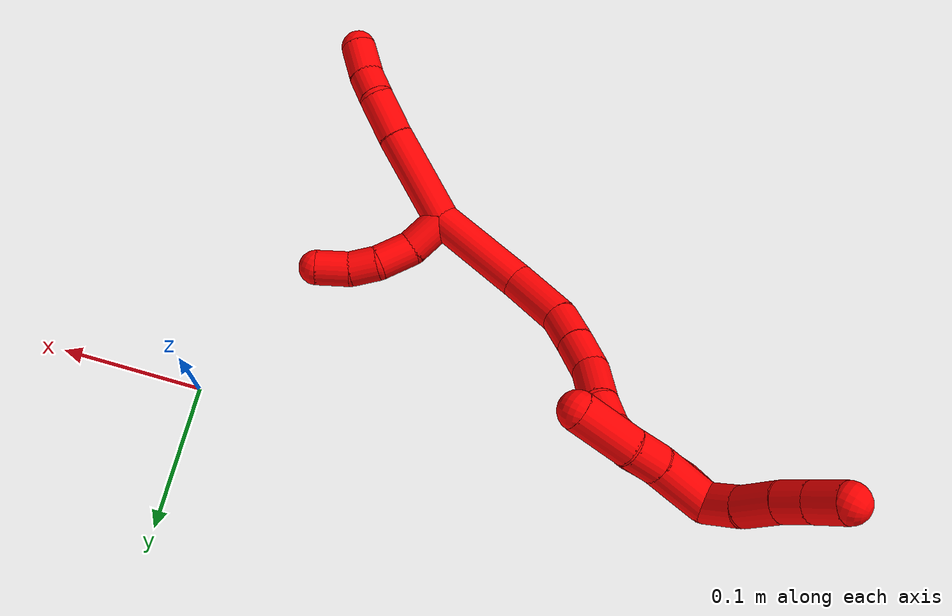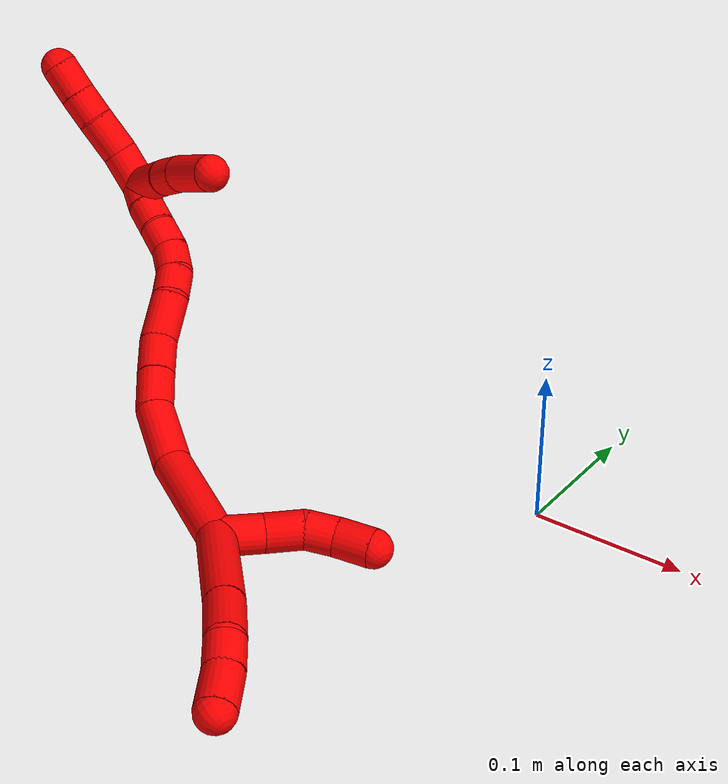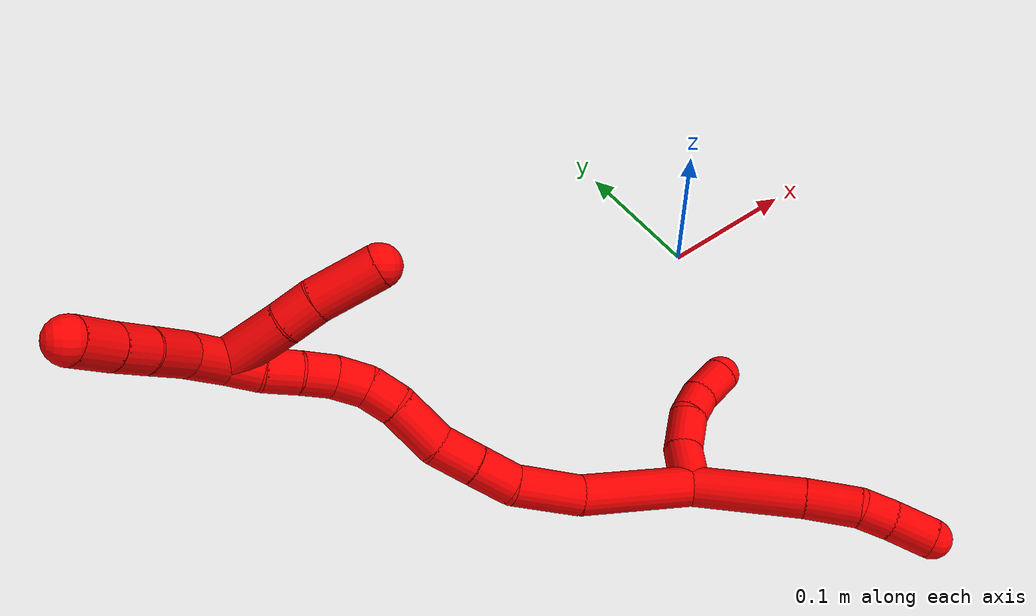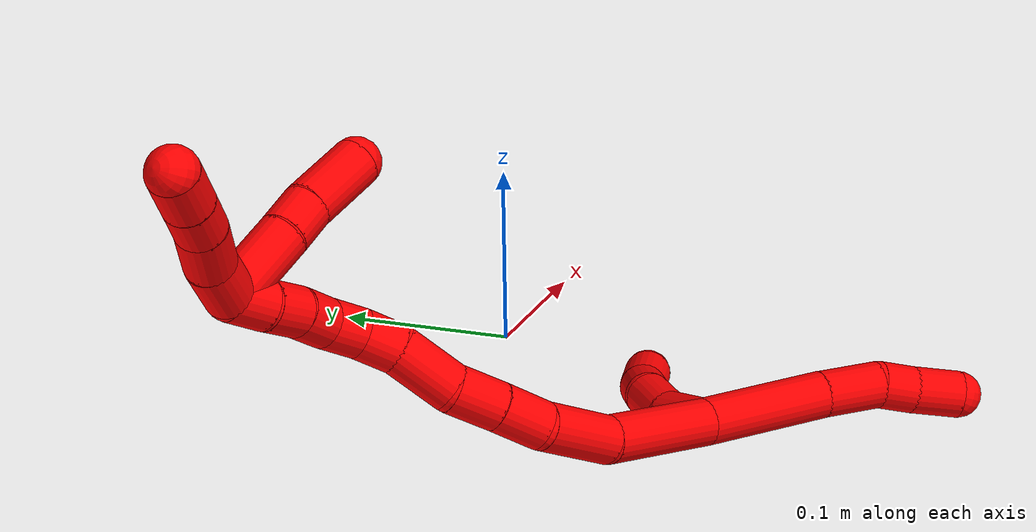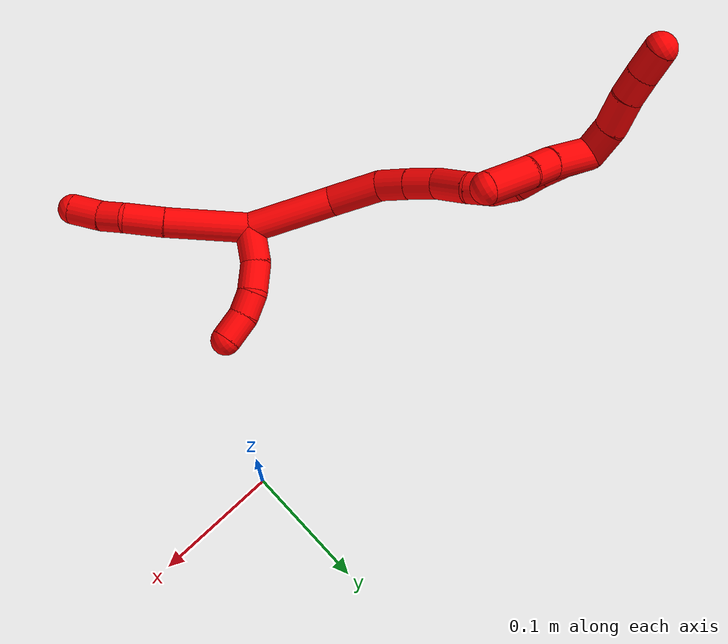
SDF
<sdf version="1.7">
 <world name="default">
  <model name="2">
   <static>0</static>
   <link name="2">
    <collision name="collision-cylinder-e_1_2_8">
     <pose>0.014497 -0.015915 -0.027332 2.61431 0.429787 1.35994</pose>
     <geometry><cylinder><radius>0.0125</radius><length>0.069583</length></cylinder></geometry>
     <surface>
      <friction><ode><mu>1.16</mu><mu2>1.16</mu2><slip1>0</slip1><slip2>0</slip2></ode></friction>
      <contact><ode><kp>1e+06</kp><kd>1</kd><max_vel>0</max_vel><min_depth>0.001</min_depth></ode></contact>
     </surface>
    </collision>
    <visual name="visual-cylinder-e_1_2_8">
     <pose>0.014497 -0.015915 -0.027332 2.61431 0.429787 1.35994</pose>
     <geometry><cylinder><radius>0.0125</radius><length>0.069583</length></cylinder></geometry>
     <material><ambient>1 0 0 1</ambient></material>
    </visual>
    <collision name="collision-cylinder-e_2_8_9">
     <pose>0.035383 -0.040305 -0.067466 2.55676 0.394344 1.17172</pose>
     <geometry><cylinder><radius>0.0125</radius><length>0.033261</length></cylinder></geometry>
     <surface>
      <friction><ode><mu>1.16</mu><mu2>1.16</mu2><slip1>0</slip1><slip2>0</slip2></ode></friction>
      <contact><ode><kp>1e+06</kp><kd>1</kd><max_vel>0</max_vel><min_depth>0.001</min_depth></ode></contact>
     </surface>
    </collision>
    <visual name="visual-cylinder-e_2_8_9">
     <pose>0.035383 -0.040305 -0.067466 2.55676 0.394344 1.17172</pose>
     <geometry><cylinder><radius>0.0125</radius><length>0.033261</length></cylinder></geometry>
     <material><ambient>1 0 0 1</ambient></material>
    </visual>
    <collision name="collision-cylinder-e_3_9_10">
     <pose>0.042758 -0.054548 -0.088704 2.542 0.096163 0.308855</pose>
     <geometry><cylinder><radius>0.0125</radius><length>0.020532</length></cylinder></geometry>
     <surface>
      <friction><ode><mu>1.16</mu><mu2>1.16</mu2><slip1>0</slip1><slip2>0</slip2></ode></friction>
      <contact><ode><kp>1e+06</kp><kd>1</kd><max_vel>0</max_vel><min_depth>0.001</min_depth></ode></contact>
     </surface>
    </collision>
    <visual name="visual-cylinder-e_3_9_10">
     <pose>0.042758 -0.054548 -0.088704 2.542 0.096163 0.308855</pose>
     <geometry><cylinder><radius>0.0125</radius><length>0.020532</length></cylinder></geometry>
     <material><ambient>1 0 0 1</ambient></material>
    </visual>
    <collision name="collision-cylinder-e_4_10_6">
     <pose>0.045876 -0.069119 -0.106894 2.40728 0.160836 0.413124</pose>
     <geometry><cylinder><radius>0.0125</radius><length>0.026624</length></cylinder></geometry>
     <surface>
      <friction><ode><mu>1.16</mu><mu2>1.16</mu2><slip1>0</slip1><slip2>0</slip2></ode></friction>
      <contact><ode><kp>1e+06</kp><kd>1</kd><max_vel>0</max_vel><min_depth>0.001</min_depth></ode></contact>
     </surface>
    </collision>
    <visual name="visual-cylinder-e_4_10_6">
     <pose>0.045876 -0.069119 -0.106894 2.40728 0.160836 0.413124</pose>
     <geometry><cylinder><radius>0.0125</radius><length>0.026624</length></cylinder></geometry>
     <material><ambient>1 0 0 1</ambient></material>
    </visual>
    <collision name="collision-cylinder-e_1_2_11">
     <pose>-0.001597 0.013997 -0.004643 -1.89113 -0.107897 0.149342</pose>
     <geometry><cylinder><radius>0.0125</radius><length>0.029666</length></cylinder></geometry>
     <surface>
      <friction><ode><mu>1.16</mu><mu2>1.16</mu2><slip1>0</slip1><slip2>0</slip2></ode></friction>
      <contact><ode><kp>1e+06</kp><kd>1</kd><max_vel>0</max_vel><min_depth>0.001</min_depth></ode></contact>
     </surface>
    </collision>
    <visual name="visual-cylinder-e_1_2_11">
     <pose>-0.001597 0.013997 -0.004643 -1.89113 -0.107897 0.149342</pose>
     <geometry><cylinder><radius>0.0125</radius><length>0.029666</length></cylinder></geometry>
     <material><ambient>1 0 0 1</ambient></material>
    </visual>
    <collision name="collision-cylinder-e_2_11_12">
     <pose>-0.000716 0.039244 -0.015261 -2.05894 0.192209 -0.317974</pose>
     <geometry><cylinder><radius>0.0125</radius><length>0.025954</length></cylinder></geometry>
     <surface>
      <friction><ode><mu>1.16</mu><mu2>1.16</mu2><slip1>0</slip1><slip2>0</slip2></ode></friction>
      <contact><ode><kp>1e+06</kp><kd>1</kd><max_vel>0</max_vel><min_depth>0.001</min_depth></ode></contact>
     </surface>
    </collision>
    <visual name="visual-cylinder-e_2_11_12">
     <pose>-0.000716 0.039244 -0.015261 -2.05894 0.192209 -0.317974</pose>
     <geometry><cylinder><radius>0.0125</radius><length>0.025954</length></cylinder></geometry>
     <material><ambient>1 0 0 1</ambient></material>
    </visual>
    <collision name="collision-cylinder-e_3_12_13">
     <pose>0.002756 0.057377 -0.028494 -2.38278 0.09892 -0.247028</pose>
     <geometry><cylinder><radius>0.0125</radius><length>0.020106</length></cylinder></geometry>
     <surface>
      <friction><ode><mu>1.16</mu><mu2>1.16</mu2><slip1>0</slip1><slip2>0</slip2></ode></friction>
      <contact><ode><kp>1e+06</kp><kd>1</kd><max_vel>0</max_vel><min_depth>0.001</min_depth></ode></contact>
     </surface>
    </collision>
    <visual name="visual-cylinder-e_3_12_13">
     <pose>0.002756 0.057377 -0.028494 -2.38278 0.09892 -0.247028</pose>
     <geometry><cylinder><radius>0.0125</radius><length>0.020106</length></cylinder></geometry>
     <material><ambient>1 0 0 1</ambient></material>
    </visual>
    <collision name="collision-cylinder-e_4_13_5">
     <pose>0.006967 0.070346 -0.045749 -2.59472 0.268398 -0.897294</pose>
     <geometry><cylinder><radius>0.0125</radius><length>0.024274</length></cylinder></geometry>
     <surface>
      <friction><ode><mu>1.16</mu><mu2>1.16</mu2><slip1>0</slip1><slip2>0</slip2></ode></friction>
      <contact><ode><kp>1e+06</kp><kd>1</kd><max_vel>0</max_vel><min_depth>0.001</min_depth></ode></contact>
     </surface>
    </collision>
    <visual name="visual-cylinder-e_4_13_5">
     <pose>0.006967 0.070346 -0.045749 -2.59472 0.268398 -0.897294</pose>
     <geometry><cylinder><radius>0.0125</radius><length>0.024274</length></cylinder></geometry>
     <material><ambient>1 0 0 1</ambient></material>
    </visual>
    <collision name="collision-cylinder-e_1_2_14">
     <pose>-0.008981 0.005476 0.033934 -0.159986 -0.255564 0.020599</pose>
     <geometry><cylinder><radius>0.0125</radius><length>0.071053</length></cylinder></geometry>
     <surface>
      <friction><ode><mu>1.16</mu><mu2>1.16</mu2><slip1>0</slip1><slip2>0</slip2></ode></friction>
      <contact><ode><kp>1e+06</kp><kd>1</kd><max_vel>0</max_vel><min_depth>0.001</min_depth></ode></contact>
     </surface>
    </collision>
    <visual name="visual-cylinder-e_1_2_14">
     <pose>-0.008981 0.005476 0.033934 -0.159986 -0.255564 0.020599</pose>
     <geometry><cylinder><radius>0.0125</radius><length>0.071053</length></cylinder></geometry>
     <material><ambient>1 0 0 1</ambient></material>
    </visual>
    <collision name="collision-cylinder-e_2_14_15">
     <pose>-0.01761 0.016489 0.089112 -0.255011 0.016003 -0.002052</pose>
     <geometry><cylinder><radius>0.0125</radius><length>0.043914</length></cylinder></geometry>
     <surface>
      <friction><ode><mu>1.16</mu><mu2>1.16</mu2><slip1>0</slip1><slip2>0</slip2></ode></friction>
      <contact><ode><kp>1e+06</kp><kd>1</kd><max_vel>0</max_vel><min_depth>0.001</min_depth></ode></contact>
     </surface>
    </collision>
    <visual name="visual-cylinder-e_2_14_15">
     <pose>-0.01761 0.016489 0.089112 -0.255011 0.016003 -0.002052</pose>
     <geometry><cylinder><radius>0.0125</radius><length>0.043914</length></cylinder></geometry>
     <material><ambient>1 0 0 1</ambient></material>
    </visual>
    <collision name="collision-cylinder-e_3_15_16">
     <pose>-0.015244 0.028576 0.121431 -0.533949 0.155313 -0.042558</pose>
     <geometry><cylinder><radius>0.0125</radius><length>0.026046</length></cylinder></geometry>
     <surface>
      <friction><ode><mu>1.16</mu><mu2>1.16</mu2><slip1>0</slip1><slip2>0</slip2></ode></friction>
      <contact><ode><kp>1e+06</kp><kd>1</kd><max_vel>0</max_vel><min_depth>0.001</min_depth></ode></contact>
     </surface>
    </collision>
    <visual name="visual-cylinder-e_3_15_16">
     <pose>-0.015244 0.028576 0.121431 -0.533949 0.155313 -0.042558</pose>
     <geometry><cylinder><radius>0.0125</radius><length>0.026046</length></cylinder></geometry>
     <material><ambient>1 0 0 1</ambient></material>
    </visual>
    <collision name="collision-cylinder-e_4_16_17">
     <pose>-0.011548 0.042052 0.143382 -0.567201 0.129696 -0.037849</pose>
     <geometry><cylinder><radius>0.0125</radius><length>0.026008</length></cylinder></geometry>
     <surface>
      <friction><ode><mu>1.16</mu><mu2>1.16</mu2><slip1>0</slip1><slip2>0</slip2></ode></friction>
      <contact><ode><kp>1e+06</kp><kd>1</kd><max_vel>0</max_vel><min_depth>0.001</min_depth></ode></contact>
     </surface>
    </collision>
    <visual name="visual-cylinder-e_4_16_17">
     <pose>-0.011548 0.042052 0.143382 -0.567201 0.129696 -0.037849</pose>
     <geometry><cylinder><radius>0.0125</radius><length>0.026008</length></cylinder></geometry>
     <material><ambient>1 0 0 1</ambient></material>
    </visual>
    <collision name="collision-cylinder-e_5_17_18">
     <pose>-0.004188 0.059286 0.165445 -0.744424 0.357301 -0.140764</pose>
     <geometry><cylinder><radius>0.0125</radius><length>0.032472</length></cylinder></geometry>
     <surface>
      <friction><ode><mu>1.16</mu><mu2>1.16</mu2><slip1>0</slip1><slip2>0</slip2></ode></friction>
      <contact><ode><kp>1e+06</kp><kd>1</kd><max_vel>0</max_vel><min_depth>0.001</min_depth></ode></contact>
     </surface>
    </collision>
    <visual name="visual-cylinder-e_5_17_18">
     <pose>-0.004188 0.059286 0.165445 -0.744424 0.357301 -0.140764</pose>
     <geometry><cylinder><radius>0.0125</radius><length>0.032472</length></cylinder></geometry>
     <material><ambient>1 0 0 1</ambient></material>
    </visual>
    <collision name="collision-cylinder-e_6_18_19">
     <pose>0.002876 0.075724 0.18455 -0.658958 0.137456 -0.047068</pose>
     <geometry><cylinder><radius>0.0125</radius><length>0.020219</length></cylinder></geometry>
     <surface>
      <friction><ode><mu>1.16</mu><mu2>1.16</mu2><slip1>0</slip1><slip2>0</slip2></ode></friction>
      <contact><ode><kp>1e+06</kp><kd>1</kd><max_vel>0</max_vel><min_depth>0.001</min_depth></ode></contact>
     </surface>
    </collision>
    <visual name="visual-cylinder-e_6_18_19">
     <pose>0.002876 0.075724 0.18455 -0.658958 0.137456 -0.047068</pose>
     <geometry><cylinder><radius>0.0125</radius><length>0.020219</length></cylinder></geometry>
     <material><ambient>1 0 0 1</ambient></material>
    </visual>
    <collision name="collision-cylinder-e_7_19_20">
     <pose>0.004851 0.085356 0.2019 -0.355368 0.058548 -0.010517</pose>
     <geometry><cylinder><radius>0.0125</radius><length>0.020157</length></cylinder></geometry>
     <surface>
      <friction><ode><mu>1.16</mu><mu2>1.16</mu2><slip1>0</slip1><slip2>0</slip2></ode></friction>
      <contact><ode><kp>1e+06</kp><kd>1</kd><max_vel>0</max_vel><min_depth>0.001</min_depth></ode></contact>
     </surface>
    </collision>
    <visual name="visual-cylinder-e_7_19_20">
     <pose>0.004851 0.085356 0.2019 -0.355368 0.058548 -0.010517</pose>
     <geometry><cylinder><radius>0.0125</radius><length>0.020157</length></cylinder></geometry>
     <material><ambient>1 0 0 1</ambient></material>
    </visual>
    <collision name="collision-cylinder-e_8_20_21">
     <pose>0.006803 0.089526 0.221249 -0.06741 0.136159 -0.004598</pose>
     <geometry><cylinder><radius>0.0125</radius><length>0.020063</length></cylinder></geometry>
     <surface>
      <friction><ode><mu>1.16</mu><mu2>1.16</mu2><slip1>0</slip1><slip2>0</slip2></ode></friction>
      <contact><ode><kp>1e+06</kp><kd>1</kd><max_vel>0</max_vel><min_depth>0.001</min_depth></ode></contact>
     </surface>
    </collision>
    <visual name="visual-cylinder-e_8_20_21">
     <pose>0.006803 0.089526 0.221249 -0.06741 0.136159 -0.004598</pose>
     <geometry><cylinder><radius>0.0125</radius><length>0.020063</length></cylinder></geometry>
     <material><ambient>1 0 0 1</ambient></material>
    </visual>
    <collision name="collision-cylinder-e_9_21_22">
     <pose>0.008258 0.09142 0.241114 -0.12245 0.009302 -0.00057</pose>
     <geometry><cylinder><radius>0.0125</radius><length>0.020049</length></cylinder></geometry>
     <surface>
      <friction><ode><mu>1.16</mu><mu2>1.16</mu2><slip1>0</slip1><slip2>0</slip2></ode></friction>
      <contact><ode><kp>1e+06</kp><kd>1</kd><max_vel>0</max_vel><min_depth>0.001</min_depth></ode></contact>
     </surface>
    </collision>
    <visual name="visual-cylinder-e_9_21_22">
     <pose>0.008258 0.09142 0.241114 -0.12245 0.009302 -0.00057</pose>
     <geometry><cylinder><radius>0.0125</radius><length>0.020049</length></cylinder></geometry>
     <material><ambient>1 0 0 1</ambient></material>
    </visual>
    <collision name="collision-cylinder-e_10_22_1">
     <pose>0.008787 0.095344 0.260691 -0.273335 0.043618 -0.005999</pose>
     <geometry><cylinder><radius>0.0125</radius><length>0.020017</length></cylinder></geometry>
     <surface>
      <friction><ode><mu>1.16</mu><mu2>1.16</mu2><slip1>0</slip1><slip2>0</slip2></ode></friction>
      <contact><ode><kp>1e+06</kp><kd>1</kd><max_vel>0</max_vel><min_depth>0.001</min_depth></ode></contact>
     </surface>
    </collision>
    <visual name="visual-cylinder-e_10_22_1">
     <pose>0.008787 0.095344 0.260691 -0.273335 0.043618 -0.005999</pose>
     <geometry><cylinder><radius>0.0125</radius><length>0.020017</length></cylinder></geometry>
     <material><ambient>1 0 0 1</ambient></material>
    </visual>
    <collision name="collision-cylinder-e_1_1_23">
     <pose>0.015803 0.095916 0.282197 0.177211 0.499165 0.045281</pose>
     <geometry><cylinder><radius>0.0125</radius><length>0.027488</length></cylinder></geometry>
     <surface>
      <friction><ode><mu>1.16</mu><mu2>1.16</mu2><slip1>0</slip1><slip2>0</slip2></ode></friction>
      <contact><ode><kp>1e+06</kp><kd>1</kd><max_vel>0</max_vel><min_depth>0.001</min_depth></ode></contact>
     </surface>
    </collision>
    <visual name="visual-cylinder-e_1_1_23">
     <pose>0.015803 0.095916 0.282197 0.177211 0.499165 0.045281</pose>
     <geometry><cylinder><radius>0.0125</radius><length>0.027488</length></cylinder></geometry>
     <material><ambient>1 0 0 1</ambient></material>
    </visual>
    <collision name="collision-cylinder-e_2_23_24">
     <pose>0.030043 0.089471 0.305081 0.373842 0.575003 0.111732</pose>
     <geometry><cylinder><radius>0.0125</radius><length>0.028175</length></cylinder></geometry>
     <surface>
      <friction><ode><mu>1.16</mu><mu2>1.16</mu2><slip1>0</slip1><slip2>0</slip2></ode></friction>
      <contact><ode><kp>1e+06</kp><kd>1</kd><max_vel>0</max_vel><min_depth>0.001</min_depth></ode></contact>
     </surface>
    </collision>
    <visual name="visual-cylinder-e_2_23_24">
     <pose>0.030043 0.089471 0.305081 0.373842 0.575003 0.111732</pose>
     <geometry><cylinder><radius>0.0125</radius><length>0.028175</length></cylinder></geometry>
     <material><ambient>1 0 0 1</ambient></material>
    </visual>
    <collision name="collision-cylinder-e_3_24_25">
     <pose>0.04274 0.082586 0.324871 0.28438 0.502971 0.073528</pose>
     <geometry><cylinder><radius>0.0125</radius><length>0.020892</length></cylinder></geometry>
     <surface>
      <friction><ode><mu>1.16</mu><mu2>1.16</mu2><slip1>0</slip1><slip2>0</slip2></ode></friction>
      <contact><ode><kp>1e+06</kp><kd>1</kd><max_vel>0</max_vel><min_depth>0.001</min_depth></ode></contact>
     </surface>
    </collision>
    <visual name="visual-cylinder-e_3_24_25">
     <pose>0.04274 0.082586 0.324871 0.28438 0.502971 0.073528</pose>
     <geometry><cylinder><radius>0.0125</radius><length>0.020892</length></cylinder></geometry>
     <material><ambient>1 0 0 1</ambient></material>
    </visual>
    <collision name="collision-cylinder-e_4_25_4">
     <pose>0.053591 0.077548 0.343529 0.245144 0.519184 0.065411</pose>
     <geometry><cylinder><radius>0.0125</radius><length>0.023445</length></cylinder></geometry>
     <surface>
      <friction><ode><mu>1.16</mu><mu2>1.16</mu2><slip1>0</slip1><slip2>0</slip2></ode></friction>
      <contact><ode><kp>1e+06</kp><kd>1</kd><max_vel>0</max_vel><min_depth>0.001</min_depth></ode></contact>
     </surface>
    </collision>
    <visual name="visual-cylinder-e_4_25_4">
     <pose>0.053591 0.077548 0.343529 0.245144 0.519184 0.065411</pose>
     <geometry><cylinder><radius>0.0125</radius><length>0.023445</length></cylinder></geometry>
     <material><ambient>1 0 0 1</ambient></material>
    </visual>
    <collision name="collision-cylinder-e_1_1_26">
     <pose>0.025122 0.098855 0.257376 -3.07892 0.886564 -3.00975</pose>
     <geometry><cylinder><radius>0.0125</radius><length>0.041034</length></cylinder></geometry>
     <surface>
      <friction><ode><mu>1.16</mu><mu2>1.16</mu2><slip1>0</slip1><slip2>0</slip2></ode></friction>
      <contact><ode><kp>1e+06</kp><kd>1</kd><max_vel>0</max_vel><min_depth>0.001</min_depth></ode></contact>
     </surface>
    </collision>
    <visual name="visual-cylinder-e_1_1_26">
     <pose>0.025122 0.098855 0.257376 -3.07892 0.886564 -3.00975</pose>
     <geometry><cylinder><radius>0.0125</radius><length>0.041034</length></cylinder></geometry>
     <material><ambient>1 0 0 1</ambient></material>
    </visual>
    <collision name="collision-cylinder-e_2_26_27">
     <pose>0.048505 0.101041 0.23757 -2.94404 0.818832 -2.69256</pose>
     <geometry><cylinder><radius>0.0125</radius><length>0.020495</length></cylinder></geometry>
     <surface>
      <friction><ode><mu>1.16</mu><mu2>1.16</mu2><slip1>0</slip1><slip2>0</slip2></ode></friction>
      <contact><ode><kp>1e+06</kp><kd>1</kd><max_vel>0</max_vel><min_depth>0.001</min_depth></ode></contact>
     </surface>
    </collision>
    <visual name="visual-cylinder-e_2_26_27">
     <pose>0.048505 0.101041 0.23757 -2.94404 0.818832 -2.69256</pose>
     <geometry><cylinder><radius>0.0125</radius><length>0.020495</length></cylinder></geometry>
     <material><ambient>1 0 0 1</ambient></material>
    </visual>
    <collision name="collision-cylinder-e_3_27_3">
     <pose>0.068787 0.103624 0.216397 -3.05729 0.727932 -2.92105</pose>
     <geometry><cylinder><radius>0.0125</radius><length>0.038471</length></cylinder></geometry>
     <surface>
      <friction><ode><mu>1.16</mu><mu2>1.16</mu2><slip1>0</slip1><slip2>0</slip2></ode></friction>
      <contact><ode><kp>1e+06</kp><kd>1</kd><max_vel>0</max_vel><min_depth>0.001</min_depth></ode></contact>
     </surface>
    </collision>
    <visual name="visual-cylinder-e_3_27_3">
     <pose>0.068787 0.103624 0.216397 -3.05729 0.727932 -2.92105</pose>
     <geometry><cylinder><radius>0.0125</radius><length>0.038471</length></cylinder></geometry>
     <material><ambient>1 0 0 1</ambient></material>
    </visual>
    <collision name="collision-sphere-3">
     <pose>0.081585 0.104834 0.202088 0 -0 0</pose>
     <geometry><sphere><radius>0.0125</radius></sphere></geometry>
     <surface>
      <friction><ode><mu>1.16</mu><mu2>1.16</mu2><slip1>0</slip1><slip2>0</slip2></ode></friction>
      <contact><ode><kp>1e+06</kp><kd>1</kd><max_vel>0</max_vel><min_depth>0.001</min_depth></ode></contact>
     </surface>
    </collision>
    <visual name="visual-sphere-3">
     <pose>0.081585 0.104834 0.202088 0 -0 0</pose>
     <geometry><sphere><radius>0.0125</radius></sphere></geometry>
     <material><ambient>1 0 0 1</ambient></material>
    </visual>
    <collision name="collision-sphere-27">
     <pose>0.05599 0.102415 0.230706 0 -0 0</pose>
     <geometry><sphere><radius>0.0125</radius></sphere></geometry>
     <surface>
      <friction><ode><mu>1.16</mu><mu2>1.16</mu2><slip1>0</slip1><slip2>0</slip2></ode></friction>
      <contact><ode><kp>1e+06</kp><kd>1</kd><max_vel>0</max_vel><min_depth>0.001</min_depth></ode></contact>
     </surface>
    </collision>
    <visual name="visual-sphere-27">
     <pose>0.05599 0.102415 0.230706 0 -0 0</pose>
     <geometry><sphere><radius>0.0125</radius></sphere></geometry>
     <material><ambient>1 0 0 1</ambient></material>
    </visual>
    <collision name="collision-sphere-26">
     <pose>0.041021 0.099667 0.244434 0 -0 0</pose>
     <geometry><sphere><radius>0.0125</radius></sphere></geometry>
     <surface>
      <friction><ode><mu>1.16</mu><mu2>1.16</mu2><slip1>0</slip1><slip2>0</slip2></ode></friction>
      <contact><ode><kp>1e+06</kp><kd>1</kd><max_vel>0</max_vel><min_depth>0.001</min_depth></ode></contact>
     </surface>
    </collision>
    <visual name="visual-sphere-26">
     <pose>0.041021 0.099667 0.244434 0 -0 0</pose>
     <geometry><sphere><radius>0.0125</radius></sphere></geometry>
     <material><ambient>1 0 0 1</ambient></material>
    </visual>
    <collision name="collision-sphere-4">
     <pose>0.059408 0.075078 0.353403 0 -0 0</pose>
     <geometry><sphere><radius>0.0125</radius></sphere></geometry>
     <surface>
      <friction><ode><mu>1.16</mu><mu2>1.16</mu2><slip1>0</slip1><slip2>0</slip2></ode></friction>
      <contact><ode><kp>1e+06</kp><kd>1</kd><max_vel>0</max_vel><min_depth>0.001</min_depth></ode></contact>
     </surface>
    </collision>
    <visual name="visual-sphere-4">
     <pose>0.059408 0.075078 0.353403 0 -0 0</pose>
     <geometry><sphere><radius>0.0125</radius></sphere></geometry>
     <material><ambient>1 0 0 1</ambient></material>
    </visual>
    <collision name="collision-sphere-25">
     <pose>0.047775 0.080018 0.333655 0 -0 0</pose>
     <geometry><sphere><radius>0.0125</radius></sphere></geometry>
     <surface>
      <friction><ode><mu>1.16</mu><mu2>1.16</mu2><slip1>0</slip1><slip2>0</slip2></ode></friction>
      <contact><ode><kp>1e+06</kp><kd>1</kd><max_vel>0</max_vel><min_depth>0.001</min_depth></ode></contact>
     </surface>
    </collision>
    <visual name="visual-sphere-25">
     <pose>0.047775 0.080018 0.333655 0 -0 0</pose>
     <geometry><sphere><radius>0.0125</radius></sphere></geometry>
     <material><ambient>1 0 0 1</ambient></material>
    </visual>
    <collision name="collision-sphere-24">
     <pose>0.037704 0.085154 0.316086 0 -0 0</pose>
     <geometry><sphere><radius>0.0125</radius></sphere></geometry>
     <surface>
      <friction><ode><mu>1.16</mu><mu2>1.16</mu2><slip1>0</slip1><slip2>0</slip2></ode></friction>
      <contact><ode><kp>1e+06</kp><kd>1</kd><max_vel>0</max_vel><min_depth>0.001</min_depth></ode></contact>
     </surface>
    </collision>
    <visual name="visual-sphere-24">
     <pose>0.037704 0.085154 0.316086 0 -0 0</pose>
     <geometry><sphere><radius>0.0125</radius></sphere></geometry>
     <material><ambient>1 0 0 1</ambient></material>
    </visual>
    <collision name="collision-sphere-23">
     <pose>0.022382 0.093789 0.294075 0 -0 0</pose>
     <geometry><sphere><radius>0.0125</radius></sphere></geometry>
     <surface>
      <friction><ode><mu>1.16</mu><mu2>1.16</mu2><slip1>0</slip1><slip2>0</slip2></ode></friction>
      <contact><ode><kp>1e+06</kp><kd>1</kd><max_vel>0</max_vel><min_depth>0.001</min_depth></ode></contact>
     </surface>
    </collision>
    <visual name="visual-sphere-23">
     <pose>0.022382 0.093789 0.294075 0 -0 0</pose>
     <geometry><sphere><radius>0.0125</radius></sphere></geometry>
     <material><ambient>1 0 0 1</ambient></material>
    </visual>
    <collision name="collision-sphere-1">
     <pose>0.009224 0.098043 0.270319 0 -0 0</pose>
     <geometry><sphere><radius>0.0125</radius></sphere></geometry>
     <surface>
      <friction><ode><mu>1.16</mu><mu2>1.16</mu2><slip1>0</slip1><slip2>0</slip2></ode></friction>
      <contact><ode><kp>1e+06</kp><kd>1</kd><max_vel>0</max_vel><min_depth>0.001</min_depth></ode></contact>
     </surface>
    </collision>
    <visual name="visual-sphere-1">
     <pose>0.009224 0.098043 0.270319 0 -0 0</pose>
     <geometry><sphere><radius>0.0125</radius></sphere></geometry>
     <material><ambient>1 0 0 1</ambient></material>
    </visual>
    <collision name="collision-sphere-22">
     <pose>0.008351 0.092645 0.251063 0 -0 0</pose>
     <geometry><sphere><radius>0.0125</radius></sphere></geometry>
     <surface>
      <friction><ode><mu>1.16</mu><mu2>1.16</mu2><slip1>0</slip1><slip2>0</slip2></ode></friction>
      <contact><ode><kp>1e+06</kp><kd>1</kd><max_vel>0</max_vel><min_depth>0.001</min_depth></ode></contact>
     </surface>
    </collision>
    <visual name="visual-sphere-22">
     <pose>0.008351 0.092645 0.251063 0 -0 0</pose>
     <geometry><sphere><radius>0.0125</radius></sphere></geometry>
     <material><ambient>1 0 0 1</ambient></material>
    </visual>
    <collision name="collision-sphere-21">
     <pose>0.008164 0.090196 0.231165 0 -0 0</pose>
     <geometry><sphere><radius>0.0125</radius></sphere></geometry>
     <surface>
      <friction><ode><mu>1.16</mu><mu2>1.16</mu2><slip1>0</slip1><slip2>0</slip2></ode></friction>
      <contact><ode><kp>1e+06</kp><kd>1</kd><max_vel>0</max_vel><min_depth>0.001</min_depth></ode></contact>
     </surface>
    </collision>
    <visual name="visual-sphere-21">
     <pose>0.008164 0.090196 0.231165 0 -0 0</pose>
     <geometry><sphere><radius>0.0125</radius></sphere></geometry>
     <material><ambient>1 0 0 1</ambient></material>
    </visual>
    <collision name="collision-sphere-11">
     <pose>-0.003195 0.027993 -0.009287 0 -0 0</pose>
     <geometry><sphere><radius>0.0125</radius></sphere></geometry>
     <surface>
      <friction><ode><mu>1.16</mu><mu2>1.16</mu2><slip1>0</slip1><slip2>0</slip2></ode></friction>
      <contact><ode><kp>1e+06</kp><kd>1</kd><max_vel>0</max_vel><min_depth>0.001</min_depth></ode></contact>
     </surface>
    </collision>
    <visual name="visual-sphere-11">
     <pose>-0.003195 0.027993 -0.009287 0 -0 0</pose>
     <geometry><sphere><radius>0.0125</radius></sphere></geometry>
     <material><ambient>1 0 0 1</ambient></material>
    </visual>
    <collision name="collision-sphere-6">
     <pose>0.048008 -0.077924 -0.116648 0 -0 0</pose>
     <geometry><sphere><radius>0.0125</radius></sphere></geometry>
     <surface>
      <friction><ode><mu>1.16</mu><mu2>1.16</mu2><slip1>0</slip1><slip2>0</slip2></ode></friction>
      <contact><ode><kp>1e+06</kp><kd>1</kd><max_vel>0</max_vel><min_depth>0.001</min_depth></ode></contact>
     </surface>
    </collision>
    <visual name="visual-sphere-6">
     <pose>0.048008 -0.077924 -0.116648 0 -0 0</pose>
     <geometry><sphere><radius>0.0125</radius></sphere></geometry>
     <material><ambient>1 0 0 1</ambient></material>
    </visual>
    <collision name="collision-sphere-10">
     <pose>0.043744 -0.060314 -0.09714 0 -0 0</pose>
     <geometry><sphere><radius>0.0125</radius></sphere></geometry>
     <surface>
      <friction><ode><mu>1.16</mu><mu2>1.16</mu2><slip1>0</slip1><slip2>0</slip2></ode></friction>
      <contact><ode><kp>1e+06</kp><kd>1</kd><max_vel>0</max_vel><min_depth>0.001</min_depth></ode></contact>
     </surface>
    </collision>
    <visual name="visual-sphere-10">
     <pose>0.043744 -0.060314 -0.09714 0 -0 0</pose>
     <geometry><sphere><radius>0.0125</radius></sphere></geometry>
     <material><ambient>1 0 0 1</ambient></material>
    </visual>
    <collision name="collision-sphere-9">
     <pose>0.041773 -0.048782 -0.080268 0 -0 0</pose>
     <geometry><sphere><radius>0.0125</radius></sphere></geometry>
     <surface>
      <friction><ode><mu>1.16</mu><mu2>1.16</mu2><slip1>0</slip1><slip2>0</slip2></ode></friction>
      <contact><ode><kp>1e+06</kp><kd>1</kd><max_vel>0</max_vel><min_depth>0.001</min_depth></ode></contact>
     </surface>
    </collision>
    <visual name="visual-sphere-9">
     <pose>0.041773 -0.048782 -0.080268 0 -0 0</pose>
     <geometry><sphere><radius>0.0125</radius></sphere></geometry>
     <material><ambient>1 0 0 1</ambient></material>
    </visual>
    <collision name="collision-sphere-2">
     <geometry><sphere><radius>0.0125</radius></sphere></geometry>
     <surface>
      <friction><ode><mu>1.16</mu><mu2>1.16</mu2><slip1>0</slip1><slip2>0</slip2></ode></friction>
      <contact><ode><kp>1e+06</kp><kd>1</kd><max_vel>0</max_vel><min_depth>0.001</min_depth></ode></contact>
     </surface>
    </collision>
    <visual name="visual-sphere-2">
     <geometry><sphere><radius>0.0125</radius></sphere></geometry>
     <material><ambient>1 0 0 1</ambient></material>
    </visual>
    <collision name="collision-sphere-19">
     <pose>0.004261 0.081855 0.192467 0 -0 0</pose>
     <geometry><sphere><radius>0.0125</radius></sphere></geometry>
     <surface>
      <friction><ode><mu>1.16</mu><mu2>1.16</mu2><slip1>0</slip1><slip2>0</slip2></ode></friction>
      <contact><ode><kp>1e+06</kp><kd>1</kd><max_vel>0</max_vel><min_depth>0.001</min_depth></ode></contact>
     </surface>
    </collision>
    <visual name="visual-sphere-19">
     <pose>0.004261 0.081855 0.192467 0 -0 0</pose>
     <geometry><sphere><radius>0.0125</radius></sphere></geometry>
     <material><ambient>1 0 0 1</ambient></material>
    </visual>
    <collision name="collision-sphere-8">
     <pose>0.028994 -0.031829 -0.054664 0 -0 0</pose>
     <geometry><sphere><radius>0.0125</radius></sphere></geometry>
     <surface>
      <friction><ode><mu>1.16</mu><mu2>1.16</mu2><slip1>0</slip1><slip2>0</slip2></ode></friction>
      <contact><ode><kp>1e+06</kp><kd>1</kd><max_vel>0</max_vel><min_depth>0.001</min_depth></ode></contact>
     </surface>
    </collision>
    <visual name="visual-sphere-8">
     <pose>0.028994 -0.031829 -0.054664 0 -0 0</pose>
     <geometry><sphere><radius>0.0125</radius></sphere></geometry>
     <material><ambient>1 0 0 1</ambient></material>
    </visual>
    <collision name="collision-sphere-12">
     <pose>0.001763 0.050494 -0.021235 0 -0 0</pose>
     <geometry><sphere><radius>0.0125</radius></sphere></geometry>
     <surface>
      <friction><ode><mu>1.16</mu><mu2>1.16</mu2><slip1>0</slip1><slip2>0</slip2></ode></friction>
      <contact><ode><kp>1e+06</kp><kd>1</kd><max_vel>0</max_vel><min_depth>0.001</min_depth></ode></contact>
     </surface>
    </collision>
    <visual name="visual-sphere-12">
     <pose>0.001763 0.050494 -0.021235 0 -0 0</pose>
     <geometry><sphere><radius>0.0125</radius></sphere></geometry>
     <material><ambient>1 0 0 1</ambient></material>
    </visual>
    <collision name="collision-sphere-13">
     <pose>0.003749 0.064261 -0.035754 0 -0 0</pose>
     <geometry><sphere><radius>0.0125</radius></sphere></geometry>
     <surface>
      <friction><ode><mu>1.16</mu><mu2>1.16</mu2><slip1>0</slip1><slip2>0</slip2></ode></friction>
      <contact><ode><kp>1e+06</kp><kd>1</kd><max_vel>0</max_vel><min_depth>0.001</min_depth></ode></contact>
     </surface>
    </collision>
    <visual name="visual-sphere-13">
     <pose>0.003749 0.064261 -0.035754 0 -0 0</pose>
     <geometry><sphere><radius>0.0125</radius></sphere></geometry>
     <material><ambient>1 0 0 1</ambient></material>
    </visual>
    <collision name="collision-sphere-5">
     <pose>0.010186 0.076431 -0.055745 0 -0 0</pose>
     <geometry><sphere><radius>0.0125</radius></sphere></geometry>
     <surface>
      <friction><ode><mu>1.16</mu><mu2>1.16</mu2><slip1>0</slip1><slip2>0</slip2></ode></friction>
      <contact><ode><kp>1e+06</kp><kd>1</kd><max_vel>0</max_vel><min_depth>0.001</min_depth></ode></contact>
     </surface>
    </collision>
    <visual name="visual-sphere-5">
     <pose>0.010186 0.076431 -0.055745 0 -0 0</pose>
     <geometry><sphere><radius>0.0125</radius></sphere></geometry>
     <material><ambient>1 0 0 1</ambient></material>
    </visual>
    <collision name="collision-sphere-14">
     <pose>-0.017962 0.010951 0.067868 0 -0 0</pose>
     <geometry><sphere><radius>0.0125</radius></sphere></geometry>
     <surface>
      <friction><ode><mu>1.16</mu><mu2>1.16</mu2><slip1>0</slip1><slip2>0</slip2></ode></friction>
      <contact><ode><kp>1e+06</kp><kd>1</kd><max_vel>0</max_vel><min_depth>0.001</min_depth></ode></contact>
     </surface>
    </collision>
    <visual name="visual-sphere-14">
     <pose>-0.017962 0.010951 0.067868 0 -0 0</pose>
     <geometry><sphere><radius>0.0125</radius></sphere></geometry>
     <material><ambient>1 0 0 1</ambient></material>
    </visual>
    <collision name="collision-sphere-15">
     <pose>-0.017259 0.022028 0.110356 0 -0 0</pose>
     <geometry><sphere><radius>0.0125</radius></sphere></geometry>
     <surface>
      <friction><ode><mu>1.16</mu><mu2>1.16</mu2><slip1>0</slip1><slip2>0</slip2></ode></friction>
      <contact><ode><kp>1e+06</kp><kd>1</kd><max_vel>0</max_vel><min_depth>0.001</min_depth></ode></contact>
     </surface>
    </collision>
    <visual name="visual-sphere-15">
     <pose>-0.017259 0.022028 0.110356 0 -0 0</pose>
     <geometry><sphere><radius>0.0125</radius></sphere></geometry>
     <material><ambient>1 0 0 1</ambient></material>
    </visual>
    <collision name="collision-sphere-16">
     <pose>-0.01323 0.035124 0.132506 0 -0 0</pose>
     <geometry><sphere><radius>0.0125</radius></sphere></geometry>
     <surface>
      <friction><ode><mu>1.16</mu><mu2>1.16</mu2><slip1>0</slip1><slip2>0</slip2></ode></friction>
      <contact><ode><kp>1e+06</kp><kd>1</kd><max_vel>0</max_vel><min_depth>0.001</min_depth></ode></contact>
     </surface>
    </collision>
    <visual name="visual-sphere-16">
     <pose>-0.01323 0.035124 0.132506 0 -0 0</pose>
     <geometry><sphere><radius>0.0125</radius></sphere></geometry>
     <material><ambient>1 0 0 1</ambient></material>
    </visual>
    <collision name="collision-sphere-17">
     <pose>-0.009866 0.04898 0.154258 0 -0 0</pose>
     <geometry><sphere><radius>0.0125</radius></sphere></geometry>
     <surface>
      <friction><ode><mu>1.16</mu><mu2>1.16</mu2><slip1>0</slip1><slip2>0</slip2></ode></friction>
      <contact><ode><kp>1e+06</kp><kd>1</kd><max_vel>0</max_vel><min_depth>0.001</min_depth></ode></contact>
     </surface>
    </collision>
    <visual name="visual-sphere-17">
     <pose>-0.009866 0.04898 0.154258 0 -0 0</pose>
     <geometry><sphere><radius>0.0125</radius></sphere></geometry>
     <material><ambient>1 0 0 1</ambient></material>
    </visual>
    <collision name="collision-sphere-18">
     <pose>0.001491 0.069592 0.176632 0 -0 0</pose>
     <geometry><sphere><radius>0.0125</radius></sphere></geometry>
     <surface>
      <friction><ode><mu>1.16</mu><mu2>1.16</mu2><slip1>0</slip1><slip2>0</slip2></ode></friction>
      <contact><ode><kp>1e+06</kp><kd>1</kd><max_vel>0</max_vel><min_depth>0.001</min_depth></ode></contact>
     </surface>
    </collision>
    <visual name="visual-sphere-18">
     <pose>0.001491 0.069592 0.176632 0 -0 0</pose>
     <geometry><sphere><radius>0.0125</radius></sphere></geometry>
     <material><ambient>1 0 0 1</ambient></material>
    </visual>
    <collision name="collision-sphere-20">
     <pose>0.005441 0.088857 0.211333 0 -0 0</pose>
     <geometry><sphere><radius>0.0125</radius></sphere></geometry>
     <surface>
      <friction><ode><mu>1.16</mu><mu2>1.16</mu2><slip1>0</slip1><slip2>0</slip2></ode></friction>
      <contact><ode><kp>1e+06</kp><kd>1</kd><max_vel>0</max_vel><min_depth>0.001</min_depth></ode></contact>
     </surface>
    </collision>
    <visual name="visual-sphere-20">
     <pose>0.005441 0.088857 0.211333 0 -0 0</pose>
     <geometry><sphere><radius>0.0125</radius></sphere></geometry>
     <material><ambient>1 0 0 1</ambient></material>
    </visual>
    <inertial>
     <pose>0.014579 0.041823 0.113067 0 -0 0</pose>
     <mass>0.75</mass>
     <inertia>
      <ixx>0.000117</ixx>
      <ixy>0</ixy>
      <ixz>0</ixz>
      <iyy>0.000107</iyy>
      <iyz>0</iyz>
      <izz>-1.9e-05</izz>
     </inertia>
    </inertial>
   </link>
   <pose>-0.130433 -0.160191 0.020155 0.138936 -1.16069 -0.446202</pose>
  </model>
 </world>
</sdf>
